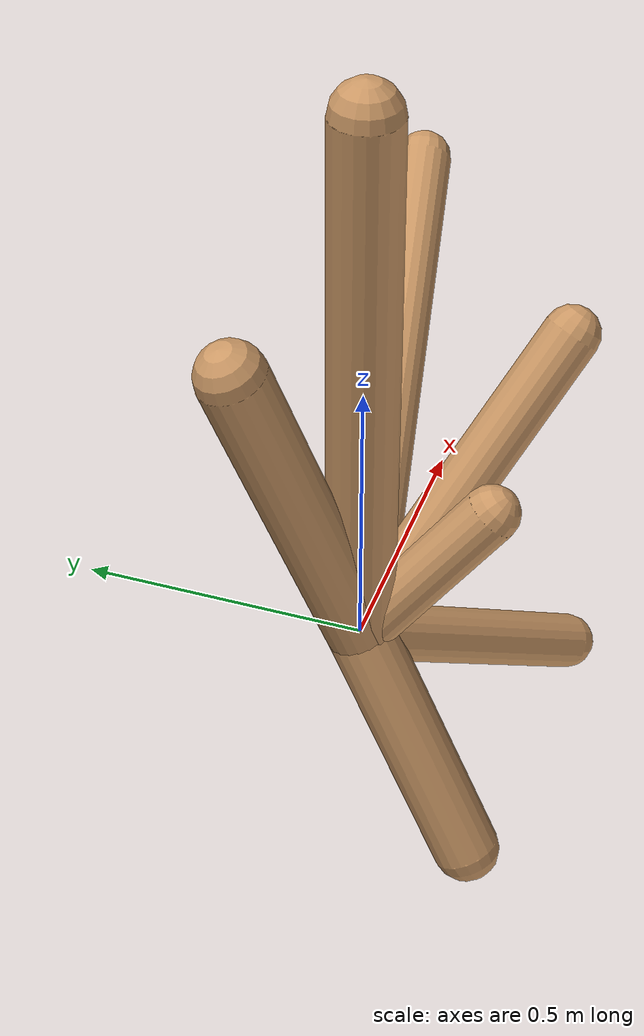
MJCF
<!--
                    joint_number: 6
                    -->
                    <mujoco model="randomrobot">
                        <compiler angle="degree" coordinate="global" inertiafromgeom="true"/>
                        <default>
                        <joint armature="0.01" damping=".1" limited="true"/>
                        <geom conaffinity="0" condim="3" contype="1" density="1000" friction="0.8 .1 .1" rgba="0.8 0.6 .4 1"/>
                        </default>
                        <option integrator="RK4" timestep="0.002"/>
                        <worldbody>
                    <body name='torso' pos='0.00 0.00 0.60'><geom fromto='0 0 0 0.00 0.00 1.00' name='torso_geom' size='0.06' type='capsule'/><inertial mass='0.3'/><body name='L0_D1' pos='0.00 0.00 0.42'><joint axis='1 0 0' name='L0_D1_joint' pos='0 0 0' range='68.56 89.68' type='hinge'/><geom fromto='0 0 0 0.08 -0.20 0.25' name='L0_D1_geom' size='0.05' type='capsule'/><inertial mass='0.3'/><body name='L1_D0' pos='0.03 -0.08 0.10'><joint axis='0 1 0' name='L1_D0_joint' pos='0 0 0' range='45.57 129.64' type='hinge'/><geom fromto='0 0 0 -0.05 -0.22 -0.42' name='L1_D0_geom' size='0.06' type='capsule'/><inertial mass='0.3'/></body><body name='L2_D0' pos='0.07 -0.18 0.22'><joint axis='1 0 0' name='L2_D0_joint' pos='0 0 0' range='10.53 25.63' type='hinge'/><geom fromto='0 0 0 0.33 -0.26 0.46' name='L2_D0_geom' size='0.05' type='capsule'/><inertial mass='0.3'/></body></body><body name='L3_D1' pos='0.00 0.00 0.99'><joint axis='0 0 1' name='L3_D1_joint' pos='0 0 0' range='48.60 91.92' type='hinge'/><geom fromto='0 0 0 0.77 0.13 0.48' name='L3_D1_geom' size='0.05' type='capsule'/><inertial mass='0.3'/><body name='L4_D0' pos='0.63 0.11 0.40'><joint axis='1 0 0' name='L4_D0_joint' pos='0 0 0' range='55.43 113.01' type='hinge'/><geom fromto='0 0 0 -0.16 0.16 0.61' name='L4_D0_geom' size='0.06' type='capsule'/><inertial mass='0.3'/></body><body name='L5_D0' pos='0.06 0.01 0.04'><joint axis='0 0 1' name='L5_D0_joint' pos='0 0 0' range='21.83 31.74' type='hinge'/><geom fromto='0 0 0 0.37 -0.29 -0.26' name='L5_D0_geom' size='0.05' type='capsule'/><inertial mass='0.3'/></body></body></body>
                        </worldbody>
                    </mujoco>
